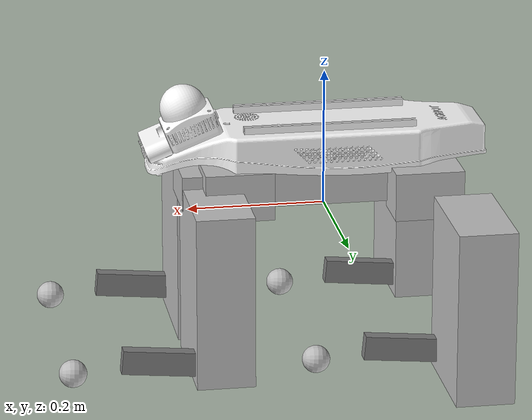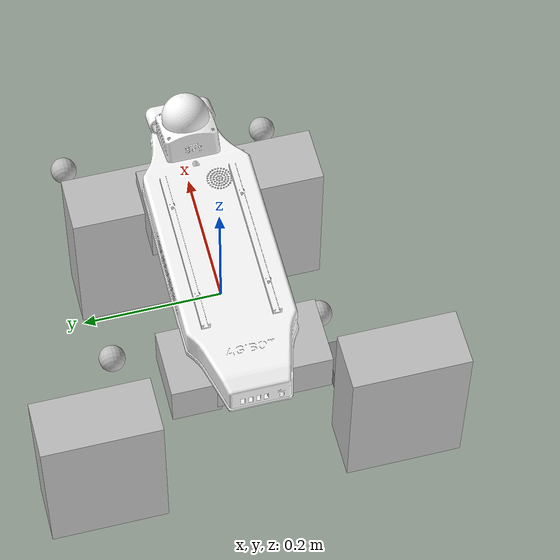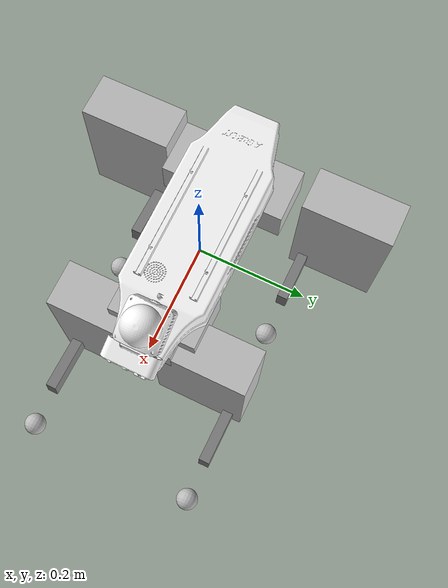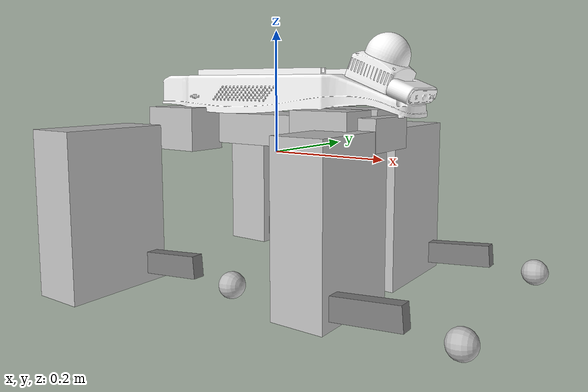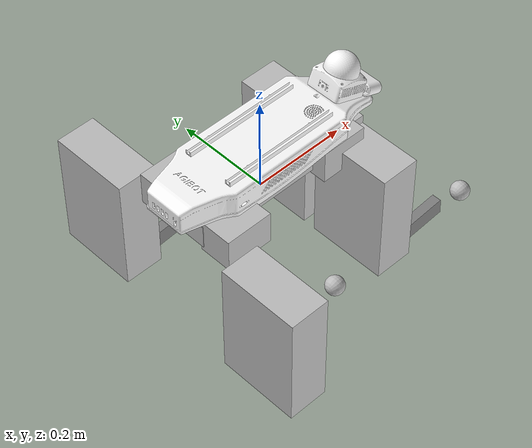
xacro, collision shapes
<?xml version="1.0" encoding="utf-8"?>

<!-- 该xacro将智元agibot_d1与苏研院上装拼接 -->

<robot name="edu_top" xmlns:xacro="http://www.ros.org/wiki/xacro">
	<xacro:include filename="$(find agibot_d1_top_description)/urdf/edu.urdf" />
	<xacro:include filename="$(find agibot_d1_top_description)/urdf/top.urdf" />

	<joint name="edu_to_top_bridge" type="fixed">
		<origin xyz="-0.009 0 0.0748" rpy="0 0 0" />
		<parent link="base_link" />
		<child link="base_link_top" />
	</joint>
</robot>

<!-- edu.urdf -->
<robot name="edu_urdf" xmlns:xacro="http://www.ros.org/wiki/xacro">
  <xacro:include filename="$(find edu_description)/urdf/edu.urdf" />
</robot>

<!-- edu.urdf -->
<robot
  name="edu_urdf">
  <link  name="base_link">
    <inertial>
      <origin
        xyz="0.0054244583 -0.00036330247 0.0060908623"
        rpy="0 0 0" />
      <mass
        value="6.2683759" />
      <inertia
        ixx="0.027359128"
        ixy="-0.000016710628"
        ixz="0.0008748801"
        iyy="0.084984679"
        iyz="-0.000013572831"
        izz="0.099223551" />
    </inertial>
    <visual>
      <origin
        xyz="0 0 0"
        rpy="0 0 0" />
      <geometry>
        <mesh
          filename="package://edu_description/meshes/BASE_LINK.STL" />
      </geometry>
      <material
        name="">
        <color
          rgba="0.75294 0.75294 0.75294 1" />
      </material>
    </visual>
    <collision>
      <origin xyz="0.01424 0 0.04" rpy="0 0 0"/>
        <geometry>
          <box size="0.4 0.1 0.05"/>
        </geometry>
    </collision>
  </link>
  <link  name="FL_ABAD_LINK">
    <inertial>
      <origin
        xyz="-0.027074453 -0.015458828 0.0000094167931"
        rpy="0 0 0" />
      <mass
        value="0.45409769" />
      <inertia
        ixx="0.000251027"
        ixy="0.000153060"
        ixz="0.0000000321747"
        iyy="0.0004874808"
        iyz="-0.0000000208886"
        izz="0.00054102144" />
    </inertial>
    <visual>
      <origin
        xyz="0 0 0"
        rpy="0 0 0" />
      <geometry>
        <mesh
          filename="package://edu_description/meshes/FL_ABAD_LINK.STL" />
      </geometry>
      <material
        name="">
        <color
          rgba="0.75294 0.75294 0.75294 1" />
      </material>
    </visual>
    <collision>
      <origin xyz="-0.04 -0.017 0.04" rpy="0 0 0"/>
      <geometry>
        <box size="0.1 0.07 0.07"/>
      </geometry>
    </collision>
  </link>
  <joint  name="FL_ABAD_JOINT"
    type="revolute">
    <origin
      xyz="0.17449 0.062 0"
      rpy="0 0 0" />
    <parent
      link="base_link" />
    <child
      link="FL_ABAD_LINK" />
    <axis
      xyz="1 0 0" />
    <limit
      lower="-0.4887"
      upper="0.4887"
      effort="48.0"
      velocity="28.0" />
  </joint>
  <link  name="FL_HIP_LINK">
    <inertial>
      <origin
        xyz="-0.00334388 -0.042909 -0.0216077"
        rpy="0 0 0" />
      <mass
        value="1.50165" />
      <inertia
        ixx="0.0069465757"
        ixy="0.00024600926"
        ixz="-0.00044260461"
        iyy="0.0047644743"
        iyz="0.0014434247"
        izz="0.0032561192" />
    </inertial>
    <visual>
      <origin
        xyz="0 0 0"
        rpy="0 0 0" />
      <geometry>
        <mesh
          filename="package://edu_description/meshes/FL_HIP_LINK.STL" />
      </geometry>
      <material
        name="">
        <color
          rgba="0.75294 0.75294 0.75294 1" />
      </material>
    </visual>
    <collision>
      <origin xyz="-0.003 -0.06 -0.08" rpy="0 0 0"/>
      <geometry>
        <box size="0.08392 0.17199 0.25400"/>
      </geometry>
    </collision>
  </link>
  <joint
    name="FL_HIP_JOINT"
    type="revolute">
    <origin
      xyz="0 0.097412 0"
      rpy="0 0 0" />
    <parent
      link="FL_ABAD_LINK" />
    <child
      link="FL_HIP_LINK" />
    <axis
      xyz="0 1 0" />
    <limit
      lower="-1.1519"
      upper="2.967"
      effort="48.0"
      velocity="28.0" />
  </joint>
  <link
    name="FL_KNEE_LINK">
    <inertial>
      <origin
        xyz="0.0076906034 0 -0.091770469"
        rpy="0 0 0" />
      <mass
        value="0.20733416" />
      <inertia
        ixx="0.0015906767"
        ixy="0.0000000002681"
        ixz="0.000030406347"
        iyy="0.0016230863"
        iyz="0.000000018098293"
        izz="0.000049932184" />
    </inertial>
    <visual>
      <origin
        xyz="0 0 0"
        rpy="0 0 0" />
      <geometry>
        <mesh
          filename="package://edu_description/meshes/FL_KNEE_LINK.STL" />
      </geometry>
      <material
        name="">
        <color
          rgba="0.49804 0.49804 0.49804 1" />
      </material>
    </visual>
    <collision>
      <origin xyz="0.02160 0 -0.08839" rpy="0 0 0"/>
      <geometry>
        <box size="0.03481 0.02000 0.11477"/>
      </geometry>
    </collision>
  </link>
  <joint
    name="FL_KNEE_JOINT"
    type="revolute">
    <origin
      xyz="0 0 -0.2"
      rpy="0 0 0" />
    <parent
      link="FL_HIP_LINK" />
    <child
      link="FL_KNEE_LINK" />
    <axis
      xyz="0 1 0" />
    <limit
      lower="-2.723"
      upper="-0.602"
      effort="48.0"
      velocity="28.0" />
  </joint>
  <link
    name="FL_FOOT_LINK">
    <inertial>
      <origin
        xyz="-0.0045073 0 -0.00867028"
        rpy="0 0 0" />
      <mass
        value="0.063194610" />
      <inertia
        ixx="0.000020429232"
        ixy="-0.0000000026626"
        ixz="0.0000018517964"
        iyy="0.000021658445"
        iyz="-0.0000000012479232"
        izz="0.000023037914" />
    </inertial>
    <visual>
      <origin
        xyz="0 0 0"
        rpy="0 0 0" />
      <geometry>
        <mesh
          filename="package://edu_description/meshes/FL_FOOT_LINK.STL" />
      </geometry>
      <material
        name="">
        <color
          rgba="0.75294 0.75294 0.75294 1" />
      </material>
    </visual>
    <collision>
      <origin xyz="0 0 0" rpy="0 0 0"/>
      <geometry>
        <sphere radius="0.02"/>
      </geometry>
    </collision>
  </link>
  <joint
    name="FL_FOOT_JOINT"
    type="fixed">
    <origin
      xyz="0 0 -0.21366"
      rpy="0 0 0" />
    <parent
      link="FL_KNEE_LINK" />
    <child
      link="FL_FOOT_LINK" />
    <axis
      xyz="0 0 0" />
  </joint>
  <link
    name="FR_ABAD_LINK">
    <inertial>
      <origin
        xyz="-0.027074453 0.015458828 -0.0000094167931"
        rpy="0 0 0" />
      <mass
        value="0.45409769" />
      <inertia
        ixx="0.000251027"
        ixy="-0.000153060"
        ixz="-0.0000000321747"
        iyy="0.0004874808"
        iyz="-0.0000000208886"
        izz="0.00054102144" />
    </inertial>
    <visual>
      <origin
        xyz="0 0 0"
        rpy="0 0 0" />
      <geometry>
        <mesh
          filename="package://edu_description/meshes/FR_ABAD_LINK.STL" />
      </geometry>
      <material
        name="">
        <color
          rgba="0.75294 0.75294 0.75294 1" />
      </material>
    </visual>
    <collision>
      <origin xyz="-0.04 0.017 0.04" rpy="0 0 0"/>
      <geometry>
        <box size="0.1 0.07 0.07"/>
      </geometry>
    </collision>
  </link>
  <joint
    name="FR_ABAD_JOINT"
    type="revolute">
    <origin
      xyz="0.17449 -0.062 0"
      rpy="0 0 0" />
    <parent
      link="base_link" />
    <child
      link="FR_ABAD_LINK" />
    <axis
      xyz="1 0 0" />
    <limit
      lower="-0.4887"
      upper="0.4887"
      effort="48.0"
      velocity="28.0" />
  </joint>
  <link
    name="FR_HIP_LINK">
    <inertial>
      <origin
        xyz="-0.0034244521 0.0427302652 -0.022325654"
        rpy="0 0 0" />
      <mass
        value="1.50799" />
      <inertia
        ixx="0.0071458222"
        ixy="-0.00025057726"
        ixz="-0.000457345"
        iyy="0.0049559736"
        iyz="-0.0014871635"
        izz="0.0032698207" />
    </inertial>
    <visual>
      <origin
        xyz="0 0 0"
        rpy="0 0 0" />
      <geometry>
        <mesh
          filename="package://edu_description/meshes/FR_HIP_LINK.STL" />
      </geometry>
      <material
        name="">
        <color
          rgba="0.75294 0.75294 0.75294 1" />
      </material>
    </visual>
    <collision>
      <origin xyz="-0.003 0.06 -0.08" rpy="0 0 0"/>
      <geometry>
        <box size="0.08392 0.17199 0.25400"/>
      </geometry>
    </collision>
  </link>
  <joint
    name="FR_HIP_JOINT"
    type="revolute">
    <origin
      xyz="0 -0.097399 0"
      rpy="0 0 0" />
    <parent
      link="FR_ABAD_LINK" />
    <child
      link="FR_HIP_LINK" />
    <axis
      xyz="0 1 0" />
    <limit
       lower="-1.1519"
      upper="2.967"
      effort="48.0"
      velocity="28.0" />
  </joint>
  <link
    name="FR_KNEE_LINK">
    <inertial>
      <origin
         xyz="0.0076906034 0 -0.091770469"
        rpy="0 0 0" />
      <mass
        value="0.20733416" />
      <inertia
        ixx="0.0015906767"
        ixy="0.0000000002681"
        ixz="0.000030406347"
        iyy="0.0016230863"
        iyz="0.000000018098293"
        izz="0.000049932184" />
    </inertial>
    <visual>
      <origin
        xyz="0 0 0"
        rpy="0 0 0" />
      <geometry>
        <mesh
          filename="package://edu_description/meshes/FR_KNEE_LINK.STL" />
      </geometry>
      <material
        name="">
        <color
          rgba="0.49804 0.49804 0.49804 1" />
      </material>
    </visual>
    <collision>
      <origin xyz="0.02160 0 -0.08839" rpy="0 0 0"/>
      <geometry>
        <box size="0.03481 0.02000 0.11477"/>
      </geometry>
    </collision>
  </link>
  <joint
    name="FR_KNEE_JOINT"
    type="revolute">
    <origin
      xyz="0 0 -0.2"
      rpy="0 0 0" />
    <parent
      link="FR_HIP_LINK" />
    <child
      link="FR_KNEE_LINK" />
    <axis
      xyz="0 1 0" />
    <limit
      lower="-2.723"
      upper="-0.602"
      effort="48.0"
      velocity="28.0" />
  </joint>
  <link
    name="FR_FOOT_LINK">
    <inertial>
      <origin
        xyz="-0.0045073 0 -0.00867028"
        rpy="0 0 0" />
      <mass
        value="0.063194610" />
      <inertia
        ixx="0.000020429232"
        ixy="-0.0000000026626"
        ixz="0.0000018517964"
        iyy="0.000021658445"
        iyz="-0.0000000012479232"
        izz="0.000023037914" />
    </inertial>
    <visual>
      <origin
        xyz="0 0 0"
        rpy="0 0 0" />
      <geometry>
        <mesh
          filename="package://edu_description/meshes/FR_FOOT_LINK.STL" />
      </geometry>
      <material
        name="">
        <color
          rgba="0.75294 0.75294 0.75294 1" />
      </material>
    </visual>
    <collision>
      <origin xyz="0 0 0" rpy="0 0 0"/>
      <geometry>
        <sphere radius="0.02"/>
      </geometry>
    </collision>
  </link>
  <joint
    name="FR_FOOT_JOINT"
    type="fixed">
    <origin
      xyz="0 0 -0.21366"
      rpy="0 0 0" />
    <parent
      link="FR_KNEE_LINK" />
    <child
      link="FR_FOOT_LINK" />
    <axis
      xyz="0 0 0" />
  </joint>
  <link
    name="RR_ABAD_LINK">
    <inertial>
      <origin
        xyz="0.027074453 0.015458828 0.0000094167931"
        rpy="0 0 0" />
      <mass
        value="0.45409769" />
      <inertia
        ixx="0.000251027"
        ixy="0.000153060"
        ixz="-0.0000000321747"
        iyy="0.0004874808"
        iyz="0.0000000208886"
        izz="0.00054102144" />
    </inertial>
    <visual>
      <origin
        xyz="0 0 0"
        rpy="0 0 0" />
      <geometry>
        <mesh
          filename="package://edu_description/meshes/RR_ABAD_LINK.STL" />
      </geometry>
      <material
        name="">
        <color
          rgba="0.75294 0.75294 0.75294 1" />
      </material>
    </visual>
    <collision>
      <origin xyz="0.04 -0.017 0.04" rpy="0 0 0"/>
      <geometry>
        <box size="0.1 0.07 0.07"/>
      </geometry>
    </collision>
  </link>
  <joint
    name="RR_ABAD_JOINT"
    type="revolute">
    <origin
      xyz="-0.17449 -0.062 0"
      rpy="0 0 0" />
    <parent
      link="base_link" />
    <child
      link="RR_ABAD_LINK" />
    <axis
      xyz="1 0 0" />
    <limit
      lower="-0.4887"
      upper="0.4887"
      effort="48.0"
      velocity="28.0" />
  </joint>
  <link
    name="RR_HIP_LINK">
    <inertial>
      <origin
        xyz="-0.0034244521 0.0427302652 -0.022325654"
        rpy="0 0 0" />
      <mass
        value="1.50799" />
      <inertia
        ixx="0.0071458222"
        ixy="-0.00025057726"
        ixz="-0.000457345"
        iyy="0.0049559736"
        iyz="-0.0014871635"
        izz="0.0032698207" />
    </inertial>
    <visual>
      <origin
        xyz="0 0 0"
        rpy="0 0 0" />
      <geometry>
        <mesh
          filename="package://edu_description/meshes/RR_HIP_LINK.STL" />
      </geometry>
      <material
        name="">
        <color
          rgba="0.75294 0.75294 0.75294 1" />
      </material>
    </visual>
    <collision>
      <origin xyz="-0.003 -0.06 -0.08" rpy="0 0 0"/>
      <geometry>
        <box size="0.08392 0.17199 0.25400"/>
      </geometry>
    </collision>
  </link>
  <joint
    name="RR_HIP_JOINT"
    type="revolute">
    <origin
      xyz="0 -0.0974 0"
      rpy="0 0 0" />
    <parent
      link="RR_ABAD_LINK" />
    <child
      link="RR_HIP_LINK" />
    <axis
      xyz="0 1 0" />
    <limit
     lower="-1.1519"
      upper="2.967"
      effort="48.0"
      velocity="28.0" />
  </joint>
  <link
    name="RR_KNEE_LINK">
    <inertial>
      <origin
        xyz="0.0076906034 0 -0.091770469"
        rpy="0 0 0" />
      <mass
        value="0.20733416" />
      <inertia
        ixx="0.0015906767"
        ixy="0.0000000002681"
        ixz="0.000030406347"
        iyy="0.0016230863"
        iyz="0.000000018098293"
        izz="0.000049932184" />
    </inertial>
    <visual>
      <origin
        xyz="0 0 0"
        rpy="0 0 0" />
      <geometry>
        <mesh
          filename="package://edu_description/meshes/RR_KNEE_LINK.STL" />
      </geometry>
      <material
        name="">
        <color
          rgba="0.49804 0.49804 0.49804 1" />
      </material>
    </visual>
    <collision>
      <origin xyz="0.02160 0 -0.08839" rpy="0 0 0"/>
      <geometry>
        <box size="0.03481 0.02000 0.11477"/>
      </geometry>
    </collision>
  </link>
  <joint
    name="RR_KNEE_JOINT"
    type="revolute">
    <origin
      xyz="0 0 -0.2"
      rpy="0 0 0" />
    <parent
      link="RR_HIP_LINK" />
    <child
      link="RR_KNEE_LINK" />
    <axis
      xyz="0 1 0" />
    <limit
      lower="-2.723"
      upper="-0.602"
      effort="48.0"
      velocity="28.0" />
  </joint>
  <link
    name="RR_FOOT_LINK">
    <inertial>
      <origin
        xyz="-0.0045073 0 -0.00867028"
        rpy="0 0 0" />
      <mass
        value="0.063194610" />
      <inertia
        ixx="0.000020429232"
        ixy="-0.0000000026626"
        ixz="0.0000018517964"
        iyy="0.000021658445"
        iyz="-0.0000000012479232"
        izz="0.000023037914" />
    </inertial>
    <visual>
      <origin
        xyz="0 0 0"
        rpy="0 0 0" />
      <geometry>
        <mesh
          filename="package://edu_description/meshes/RR_FOOT_LINK.STL" />
      </geometry>
      <material
        name="">
        <color
          rgba="0.75294 0.75294 0.75294 1" />
      </material>
    </visual>
    <collision>
      <origin xyz="0 0 0" rpy="0 0 0"/>
      <geometry>
        <sphere radius="0.02"/>
      </geometry>
    </collision>
  </link>
  <joint
    name="RR_FOOT_JOINT"
    type="fixed">
    <origin
      xyz="0 0 -0.21366"
      rpy="0 0 0" />
    <parent
      link="RR_KNEE_LINK" />
    <child
      link="RR_FOOT_LINK" />
    <axis
      xyz="0 0 0" />
  </joint>
  <link
    name="RL_ABAD_LINK">
    <inertial>
      <origin
        xyz="0.027074453 -0.015458828 -0.0000094167931"
        rpy="0 0 0" />
      <mass
        value="0.45409769" />
      <inertia
        ixx="0.000251027"
        ixy="-0.000153060"
        ixz="0.0000000321747"
        iyy="0.0004874808"
        iyz="0.0000000208886"
        izz="0.00054102144" />
    </inertial>
    <visual>
      <origin
        xyz="0 0 0"
        rpy="0 0 0" />
      <geometry>
        <mesh
          filename="package://edu_description/meshes/RL_ABAD_LINK.STL" />
      </geometry>
      <material
        name="">
        <color
          rgba="0.75294 0.75294 0.75294 1" />
      </material>
    </visual>
    <collision>
      <origin xyz="0.04 0.017 0.04" rpy="0 0 0"/>
      <geometry>
        <box size="0.1 0.07 0.07"/>
      </geometry>
    </collision>
  </link>
  <joint
    name="RL_ABAD_JOINT"
    type="revolute">
    <origin
      xyz="-0.17449 0.062 0"
      rpy="0 0 0" />
    <parent
      link="base_link" />
    <child
      link="RL_ABAD_LINK" />
    <axis
      xyz="1 0 0" />
    <limit
      lower="-0.4887"
      upper="0.4887"
      effort="48.0"
      velocity="28.0" />
  </joint>
  <link
    name="RL_HIP_LINK">
    <inertial>
       <origin
         xyz="-0.00334388 -0.042909 -0.0216077"
        rpy="0 0 0" />
      <mass
        value="1.50165" />
      <inertia
        ixx="0.0069465757"
        ixy="0.00024600926"
        ixz="-0.00044260461"
        iyy="0.0047644743"
        iyz="0.0014434247"
        izz="0.0032561192" />
    </inertial>
    <visual>
      <origin
        xyz="0 0 0"
        rpy="0 0 0" />
      <geometry>
        <mesh
          filename="package://edu_description/meshes/RL_HIP_LINK.STL" />
      </geometry>
      <material
        name="">
        <color
          rgba="0.75294 0.75294 0.75294 1" />
      </material>
    </visual>
    <collision>
      <origin xyz="-0.003 0.06 -0.08" rpy="0 0 0"/>
      <geometry>
        <box size="0.08392 0.17199 0.25400"/>
      </geometry>
    </collision>
  </link>
  <joint
    name="RL_HIP_JOINT"
    type="revolute">
    <origin
      xyz="0 0.097412 0"
      rpy="0 0 0" />
    <parent
      link="RL_ABAD_LINK" />
    <child
      link="RL_HIP_LINK" />
    <axis
      xyz="0 1 0" />
    <limit
      lower="-1.1519"
      upper="2.967"
      effort="48.0"
      velocity="28.0" />
  </joint>
  <link
    name="RL_KNEE_LINK">
    <inertial>
      <origin
        xyz="0.0076906034 0 -0.091770469"
        rpy="0 0 0" />
      <mass
        value="0.20733416" />
      <inertia
        ixx="0.0015906767"
        ixy="0.0000000002681"
        ixz="0.000030406347"
        iyy="0.0016230863"
        iyz="0.000000018098293"
        izz="0.000049932184" />
    </inertial>
    <visual>
      <origin
        xyz="0 0 0"
        rpy="0 0 0" />
      <geometry>
        <mesh
          filename="package://edu_description/meshes/RL_KNEE_LINK.STL" />
      </geometry>
      <material
        name="">
        <color
          rgba="0.49804 0.49804 0.49804 1" />
      </material>
    </visual>
    <collision>
      <origin xyz="0.02160 0 -0.08839" rpy="0 0 0"/>
      <geometry>
        <box size="0.03481 0.02000 0.11477"/>
      </geometry>
    </collision>
  </link>
  <joint
    name="RL_KNEE_JOINT"
    type="revolute">
    <origin
      xyz="0 0 -0.2"
      rpy="0 0 0" />
    <parent
      link="RL_HIP_LINK" />
    <child
      link="RL_KNEE_LINK" />
    <axis
      xyz="0 1 0" />
    <limit
      lower="-2.723"
      upper="-0.602"
      effort="48.0"
      velocity="28.0" />
  </joint>
  <link
    name="RL_FOOT_LINK">
    <inertial>
      <origin
        xyz="-0.0045073 0 -0.00867028"
        rpy="0 0 0" />
      <mass
        value="0.063194610" />
      <inertia
        ixx="0.000020429232"
        ixy="-0.0000000026626"
        ixz="0.0000018517964"
        iyy="0.000021658445"
        iyz="-0.0000000012479232"
        izz="0.000023037914" />
    </inertial>
    <visual>
      <origin
        xyz="0 0 0"
        rpy="0 0 0" />
      <geometry>
        <mesh
          filename="package://edu_description/meshes/RL_FOOT_LINK.STL" />
      </geometry>
      <material
        name="">
        <color
          rgba="0.75294 0.75294 0.75294 1" />
      </material>
    </visual>
    <collision>
      <origin xyz="0 0 0" rpy="0 0 0"/>
      <geometry>
        <sphere radius="0.02"/>
      </geometry>
    </collision>
  </link>
  <joint
    name="RL_FOOT_JOINT"
    type="fixed">
    <origin
      xyz="0 0 -0.21366"
      rpy="0 0 0" />
    <parent
      link="RL_KNEE_LINK" />
    <child
      link="RL_FOOT_LINK" />
    <axis
      xyz="0 0 0" />
  </joint>

  <gazebo>
    <plugin filename="ignition-gazebo-joint-state-publisher-system"
            name="ignition::gazebo::systems::JointStatePublisher">
    </plugin>
  </gazebo>

  <gazebo>
    <plugin filename="ignition-gazebo-odometry-publisher-system"
            name="ignition::gazebo::systems::OdometryPublisher">
      <dimensions>3</dimensions>
    </plugin>
  </gazebo>

  <gazebo>
    <plugin filename="gz_ros2_control-system"
            name="gz_ros2_control::GazeboSimROS2ControlPlugin">
      <parameters>$(find edu_config)/config/ros2_control/d1_controllers.yaml</parameters>
      <robot_param>robot_description</robot_param>
      <robot_param_node>robot_state_publisher</robot_param_node>
    </plugin>
  </gazebo>

  <ros2_control name="GazeboSimSystem" type="system">
    <hardware>
      <plugin>gz_ros2_control/GazeboSimSystem</plugin>
    </hardware>

    <joint name="FL_ABAD_JOINT">
      <command_interface name="position"/>
      <state_interface name="position"/>
      <state_interface name="velocity"/>
    </joint>

    <joint name="FL_HIP_JOINT">
      <command_interface name="position"/>
      <state_interface name="position"/>
      <state_interface name="velocity"/>
    </joint>

    <joint name="FL_KNEE_JOINT">
      <command_interface name="position"/>
      <state_interface name="position"/>
      <state_interface name="velocity"/>
    </joint>

    <joint name="FR_ABAD_JOINT">
      <command_interface name="position"/>
      <state_interface name="position"/>
      <state_interface name="velocity"/>
    </joint>

    <joint name="FR_HIP_JOINT">
      <command_interface name="position"/>
      <state_interface name="position"/>
      <state_interface name="velocity"/>
    </joint>

    <joint name="FR_KNEE_JOINT">
      <command_interface name="position"/>
      <state_interface name="position"/>
      <state_interface name="velocity"/>
    </joint>

    <joint name="RL_ABAD_JOINT">
      <command_interface name="position"/>
      <state_interface name="position"/>
      <state_interface name="velocity"/>
    </joint>

    <joint name="RL_HIP_JOINT">
      <command_interface name="position"/>
      <state_interface name="position"/>
      <state_interface name="velocity"/>
    </joint>

    <joint name="RL_KNEE_JOINT">
      <command_interface name="position"/>
      <state_interface name="position"/>
      <state_interface name="velocity"/>
    </joint>

    <joint name="RR_ABAD_JOINT">
      <command_interface name="position"/>
      <state_interface name="position"/>
      <state_interface name="velocity"/>
    </joint>

    <joint name="RR_HIP_JOINT">
      <command_interface name="position"/>
      <state_interface name="position"/>
      <state_interface name="velocity"/>
    </joint>

    <joint name="RR_KNEE_JOINT">
      <command_interface name="position"/>
      <state_interface name="position"/>
      <state_interface name="velocity"/>
    </joint>
  </ros2_control>
</robot>

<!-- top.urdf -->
<robot
  name="top.SLDASM">
  <link
    name="base_link_top">
    <inertial>
      <origin
        xyz="-0.00122226235552857 -0.000467107716158377 0.0309617057677886"
        rpy="0 0 0" />
      <mass
        value="0.611532948218259" />
      <inertia
        ixx="0.00155367992039115"
        ixy="-1.20629617570148E-05"
        ixz="-0.000224639661522976"
        iyy="0.0093601515545899"
        iyz="-1.42870836289828E-06"
        izz="0.0107713224079768" />
    </inertial>
    <visual>
      <origin
        xyz="0 0 0"
        rpy="0 0 0" />
      <geometry>
        <mesh
          filename="package://agibot_d1_top_description/meshes/base_link_top.STL" />
      </geometry>
      <material
        name="">
        <color
          rgba="1 1 1 1" />
      </material>
    </visual>
    <collision>
      <origin
        xyz="0 0 0"
        rpy="0 0 0" />
      <geometry>
        <mesh
          filename="package://agibot_d1_top_description/meshes/base_link_top.STL" />
      </geometry>
    </collision>
  </link>
  <link
    name="camera">
    <inertial>
      <origin
        xyz="-0.00158253452380214 -0.000170897047785521 0.00376068086841437"
        rpy="0 0 0" />
      <mass
        value="0.0435650266372366" />
      <inertia
        ixx="3.24651418616759E-05"
        ixy="6.15131595560488E-09"
        ixz="-9.12826140442347E-08"
        iyy="5.27770165267489E-06"
        iyz="-4.87723053546618E-08"
        izz="3.24838603946734E-05" />
    </inertial>
    <visual>
      <origin
        xyz="0 0 0"
        rpy="0 0 0" />
      <geometry>
        <mesh
          filename="package://agibot_d1_top_description/meshes/camera.STL" />
      </geometry>
      <material
        name="">
        <color
          rgba="1 1 1 1" />
      </material>
    </visual>
    <collision>
      <origin
        xyz="0 0 0"
        rpy="0 0 0" />
      <geometry>
        <mesh
          filename="package://agibot_d1_top_description/meshes/camera.STL" />
      </geometry>
    </collision>
  </link>
  <joint
    name="base2camera"
    type="fixed">
    <origin
      xyz="0.259865272236245 -0.000175354909562065 0.0221539668257328"
      rpy="0 0.37329350744933 0" />
    <parent
      link="base_link_top" />
    <child
      link="camera" />
    <axis
      xyz="0 0 0" />
  </joint>
  <link
    name="laser">
    <inertial>
      <origin
        xyz="-4.75442259659231E-05 -1.69871941643331E-06 -0.0225207252724426"
        rpy="0 0 0" />
      <mass
        value="0.0771702506647642" />
      <inertia
        ixx="5.8741133333274E-05"
        ixy="-5.23355074167588E-09"
        ixz="1.87253289703397E-08"
        iyy="5.97370887878274E-05"
        iyz="4.58870966632381E-09"
        izz="0.000109099582432989" />
    </inertial>
    <visual>
      <origin
        xyz="0 0 0"
        rpy="0 0 0" />
      <geometry>
        <mesh
          filename="package://agibot_d1_top_description/meshes/laser.STL" />
      </geometry>
      <material
        name="">
        <color
          rgba="1 1 1 1" />
      </material>
    </visual>
    <collision>
      <origin
        xyz="0 0 0"
        rpy="0 0 0" />
      <geometry>
        <mesh
          filename="package://agibot_d1_top_description/meshes/laser.STL" />
      </geometry>
    </collision>
  </link>
  <joint
    name="base2laser"
    type="fixed">
    <origin
      xyz="0.214977720461217 -0.000131573364917187 0.0815264123297748"
      rpy="0 0.37329350744933 0" />
    <parent
      link="base_link_top" />
    <child
      link="laser" />
    <axis
      xyz="0 8.14816403688161E-05 0.999999996680371" />
  </joint>

  <link
    name="front_camera">
  </link>

  <joint
    name="front_camera_joint"
    type="fixed">
    <origin
      xyz="0 0 0"
      rpy="0 0 0" />
    <parent
      link="camera" />
    <child
      link="front_camera" />
  </joint>

  <link
    name="laser_up">
  </link>

  <joint
    name="laser_up_joint"
    type="fixed">
    <origin
      xyz="0 0 0"
      rpy="0 0 0" />
    <parent
      link="laser" />
    <child
      link="laser_up" />
  </joint>

  <gazebo>
    <plugin
      filename="ignition-gazebo-sensors-system"
      name="ignition::gazebo::systems::Sensors">
      <render_engine>ogre2</render_engine>
    </plugin>
  </gazebo>

  <gazebo reference="laser_up">
    <sensor name="scan" type="gpu_lidar">
      <topic>scan</topic>
      <update_rate>10</update_rate>
      <pose>0 0 0 0 0 0</pose>

      <lidar>
        <scan>
          <horizontal>
            <samples>640</samples>
            <resolution>1</resolution>
            <min_angle>-3.1415926</min_angle>
            <max_angle>3.1415926</max_angle>
          </horizontal>
          <vertical>
            <samples>32</samples>
            <resolution>1</resolution>
            <min_angle>-0.261799</min_angle>
            <max_angle>0.4</max_angle>
          </vertical>
        </scan>
        <range>
          <min>0.08</min>
          <max>20.0</max>
          <resolution>0.01</resolution>
        </range>
      </lidar>
      <alwaysOn>1</alwaysOn>
      <visualize>true</visualize>
      <ignition_frame_id>laser_up</ignition_frame_id>
    </sensor>
  </gazebo>

  <gazebo reference="front_camera">
    <sensor name="depth_camera" type="depth_camera">
      <ignition_frame_id>front_camera</ignition_frame_id>
      <update_rate>10</update_rate>
      <topic>/depth_camera</topic>
      <camera>
        <horizontal_fov>1.05</horizontal_fov>
        <image>
          <width>256</width>
          <height>256</height>
          <format>R_FLOAT32</format>
        </image>
        <clip>
          <near>0.1</near>
          <far>10.0</far>
        </clip>
      </camera>
      <alwaysOn>1</alwaysOn>
    </sensor>
  </gazebo>

  <gazebo reference="front_camera">
    <sensor name="camera_link" type="camera">
      <camera>
        <horizontal_fov>1.047</horizontal_fov>
        <image>
          <width>320</width>
          <height>240</height>
          <format>R8G8B8</format>
        </image>
        <clip>
          <near>0.1</near>
          <far>100</far>
        </clip>
      </camera>
      <always_on>true</always_on>
      <update_rate>20</update_rate>
      <visualize>true</visualize>
      <topic>/image_raw</topic>
      <ignition_frame_id>front_camera</ignition_frame_id>
    </sensor>
  </gazebo>
</robot>
